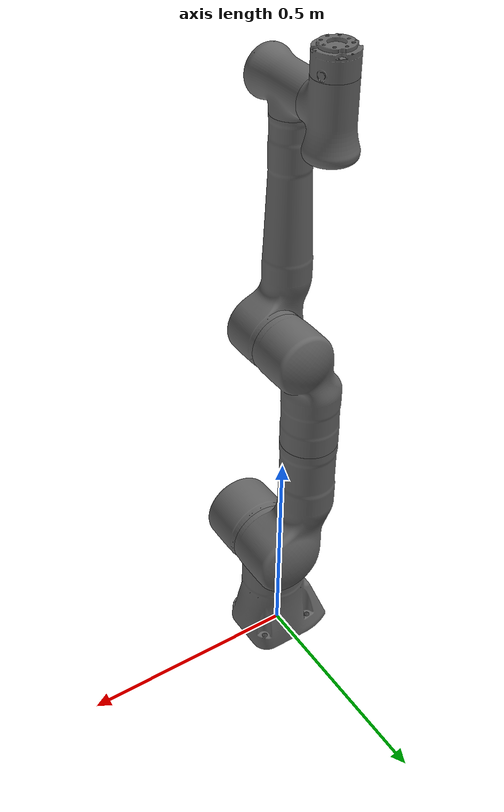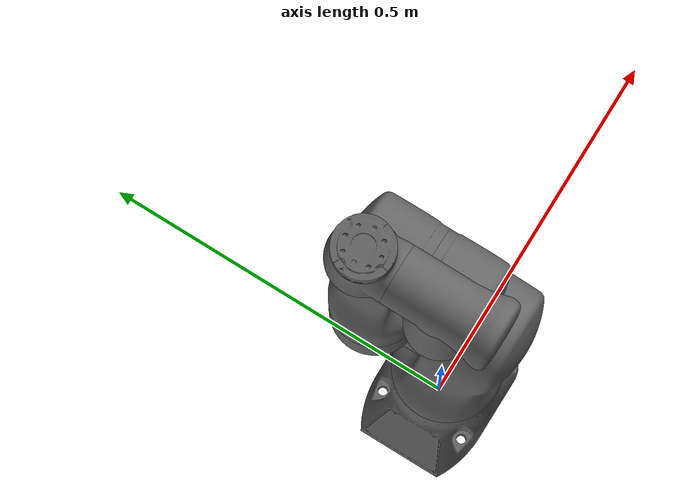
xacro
<?xml version="1.0" ?>
<robot name="kr1018" xmlns:xacro="http://www.ros.org/wiki/xacro">
  <!-- Import Rviz colors -->
  <material name="Black">
    <color rgba="0.0 0.0 0.0 1.0"/>
  </material>
  <material name="Blue">
    <color rgba="0.0 0.0 0.8 1.0"/>
  </material>
  <material name="Green">
    <color rgba="0.0 0.8 0.0 1.0"/>
  </material>
  <material name="Grey">
    <color rgba="0.4 0.4 0.4 1.0"/>
  </material>
  <material name="Orange">
    <color rgba="1.0 0.423529411765 0.0392156862745 1.0"/>
  </material>
  <material name="Brown">
    <color rgba="0.870588235294 0.811764705882 0.764705882353 1.0"/>
  </material>
  <material name="Red">
    <color rgba="0.8 0.0 0.0 1.0"/>
  </material>
  <material name="White">
    <color rgba="1.0 1.0 1.0 1.0"/>
  </material>
  <!--Import the lbr kr macro -->
  <!-- Fix to arm_link just for testing -->
  <link name="arm_link"/>
  <!--kr-->
  <joint name="arm_link_kr_joint" type="fixed">
    <origin rpy="0 0 0" xyz="0 0 0"/>
    <parent link="arm_link"/>
    <child link="kr_link_0"/>
  </joint>
  <link name="kr_link_0">
    <inertial>
      <origin rpy="0 0 0" xyz="-0.1 0 0.07"/>
      <mass value="5"/>
      <inertia ixx="0.05" ixy="0" ixz="0" iyy="0.06" iyz="0" izz="0.03"/>
    </inertial>
    <visual>
      <origin rpy="0 0 0" xyz="0 0 0"/>
      <geometry>
        <mesh filename="package://bunker_description/meshes/kr1018/visual/link_0.stl"/>
      </geometry>
      <material name="Grey"/>
    </visual>
    <collision>
      <origin rpy="0 0 0" xyz="0 0 0"/>
      <geometry>
        <mesh filename="package://bunker_description/meshes/kr1018/collision/link_0.stl"/>
      </geometry>
      <material name="Grey"/>
    </collision>
    <self_collision_checking>
      <origin rpy="0 0 0" xyz="0 0 0"/>
      <geometry>
        <capsule length="0.25" radius="0.15"/>
      </geometry>
    </self_collision_checking>
  </link>
  <joint name="kr_joint_1" type="revolute">
    <parent link="kr_link_0"/>
    <child link="kr_link_1"/>
    <origin rpy="0 0 0" xyz="0.017 0 0.2432"/>
    <axis xyz="0 0 1"/>
    <limit effort="300" lower="-2.96705972839" upper="2.96705972839" velocity="10"/>
    <safety_controller k_position="100" k_velocity="2" soft_lower_limit="-2.93215314335" soft_upper_limit="2.93215314335"/>
    <dynamics damping="0.5"/>
  </joint>
  <link name="kr_link_1">
    <inertial>
      <origin rpy="0 0 0" xyz="0 -0.03 0.12"/>
      <mass value="4"/>
      <inertia ixx="0.1" ixy="0" ixz="0" iyy="0.09" iyz="0" izz="0.02"/>
    </inertial>
    <visual>
      <origin rpy="0 0 0" xyz="0 0 0"/>
      <geometry>
        <mesh filename="package://bunker_description/meshes/kr1018/visual/link_1.stl"/>
      </geometry>
      <material name="Grey"/>
    </visual>
    <collision>
      <origin rpy="0 0 0" xyz="0 0 0"/>
      <geometry>
        <mesh filename="package://bunker_description/meshes/kr1018/collision/link_1.stl"/>
      </geometry>
      <material name="Grey"/>
    </collision>
  </link>
  <joint name="kr_joint_2" type="revolute">
    <parent link="kr_link_1"/>
    <child link="kr_link_2"/>
    <origin rpy="1.57079632679   0 3.14159265359" xyz="0.062 0.0462 0.13"/>
    <axis xyz="0 0 1"/>
    <limit effort="300" lower="-2.09439510239" upper="2.09439510239" velocity="10"/>
    <safety_controller k_position="100" k_velocity="2" soft_lower_limit="-2.05948851735" soft_upper_limit="2.05948851735"/>
    <dynamics damping="0.5"/>
  </joint>
  <link name="kr_link_2">
    <inertial>
      <origin rpy="0 0 0" xyz="0.0003 0.059 0.042"/>
      <mass value="4"/>
      <inertia ixx="0.05" ixy="0" ixz="0" iyy="0.018" iyz="0" izz="0.044"/>
    </inertial>
    <visual>
      <origin rpy="0 0 0" xyz="0 0 0"/>
      <geometry>
        <mesh filename="package://bunker_description/meshes/kr1018/visual/link_2.stl"/>
      </geometry>
      <material name="Grey"/>
    </visual>
    <collision>
      <origin rpy="0 0 0" xyz="0 0 0"/>
      <geometry>
        <mesh filename="package://bunker_description/meshes/kr1018/collision/link_2.stl"/>
      </geometry>
      <material name="Grey"/>
    </collision>
  </link>
  <joint name="kr_joint_3" type="revolute">
    <parent link="kr_link_2"/>
    <child link="kr_link_3"/>
    <origin rpy="1.57079632679 0 3.14159265359" xyz="0.062 0.2908 0.0647"/>
    <axis xyz="0 0 1"/>
    <limit effort="300" lower="-2.96705972839" upper="2.96705972839" velocity="10"/>
    <safety_controller k_position="100" k_velocity="2" soft_lower_limit="-2.93215314335" soft_upper_limit="2.93215314335"/>
    <dynamics damping="0.5"/>
  </joint>
  <link name="kr_link_3">
    <inertial>
      <origin rpy="0 0 0" xyz="0 0.03 0.13"/>
      <mass value="3"/>
      <inertia ixx="0.08" ixy="0" ixz="0" iyy="0.075" iyz="0" izz="0.01"/>
    </inertial>
    <visual>
      <origin rpy="0 0 0" xyz="0 0 0"/>
      <geometry>
        <mesh filename="package://bunker_description/meshes/kr1018/visual/link_3.stl"/>
      </geometry>
      <material name="Grey"/>
    </visual>
    <collision>
      <origin rpy="0 0 0" xyz="0 0 0"/>
      <geometry>
        <mesh filename="package://bunker_description/meshes/kr1018/collision/link_3.stl"/>
      </geometry>
      <material name="Grey"/>
    </collision>
  </link>
  <joint name="kr_joint_4" type="revolute">
    <parent link="kr_link_3"/>
    <child link="kr_link_4"/>
    <origin rpy="1.57079632679 0 0" xyz="0.05 -0.0407 0.2317"/>
    <axis xyz="0 0 1"/>
    <limit effort="300" lower="-2.09439510239" upper="2.09439510239" velocity="10"/>
    <safety_controller k_position="100" k_velocity="2" soft_lower_limit="-2.05948851735" soft_upper_limit="2.05948851735"/>
    <dynamics damping="0.5"/>
  </joint>
  <link name="kr_link_4">
    <inertial>
      <origin rpy="0 0 0" xyz="0 0.067 0.034"/>
      <mass value="2.7"/>
      <inertia ixx="0.03" ixy="0" ixz="0" iyy="0.01" iyz="0" izz="0.029"/>
    </inertial>
    <visual>
      <origin rpy="0 0 0" xyz="0 0 0"/>
      <geometry>
        <mesh filename="package://bunker_description/meshes/kr1018/visual/link_4.stl"/>
      </geometry>
      <material name="Grey"/>
    </visual>
    <collision>
      <origin rpy="0 0 0" xyz="0 0 0"/>
      <geometry>
        <mesh filename="package://bunker_description/meshes/kr1018/collision/link_4.stl"/>
      </geometry>
      <material name="Grey"/>
    </collision>
  </link>
  <joint name="kr_joint_5" type="revolute">
    <parent link="kr_link_4"/>
    <child link="kr_link_5"/>
    <origin rpy="-1.57079632679 3.14159265359 0" xyz="-0.05 0.4195 0.0532"/>
    <axis xyz="0 0 1"/>
    <limit effort="300" lower="-2.96705972839" upper="2.96705972839" velocity="10"/>
    <safety_controller k_position="100" k_velocity="2" soft_lower_limit="-2.93215314335" soft_upper_limit="2.93215314335"/>
    <dynamics damping="0.5"/>
  </joint>
  <link name="kr_link_5">
    <inertial>
      <origin rpy="0 0 0" xyz="0.0001 0.021 0.076"/>
      <mass value="1.7"/>
      <inertia ixx="0.02" ixy="0" ixz="0" iyy="0.018" iyz="0" izz="0.005"/>
    </inertial>
    <visual>
      <origin rpy="0 0 0" xyz="0 0 0"/>
      <geometry>
        <mesh filename="package://bunker_description/meshes/kr1018/visual/link_5.stl"/>
      </geometry>
      <material name="Grey"/>
    </visual>
    <collision>
      <origin rpy="0 0 0" xyz="0 0 0"/>
      <geometry>
        <mesh filename="package://bunker_description/meshes/kr1018/collision/link_5.stl"/>
      </geometry>
      <material name="Grey"/>
    </collision>
  </link>
  <joint name="kr_joint_6" type="revolute">
    <parent link="kr_link_5"/>
    <child link="kr_link_6"/>
    <origin rpy="1.57079632679 0 0" xyz="0 -0.0645 0.0465"/>
    <axis xyz="0 0 1"/>
    <limit effort="300" lower="-2.09439510239" upper="2.09439510239" velocity="10"/>
    <safety_controller k_position="100" k_velocity="2" soft_lower_limit="-2.05948851735" soft_upper_limit="2.05948851735"/>
    <dynamics damping="0.5"/>
  </joint>
  <link name="kr_link_6">
    <inertial>
      <origin rpy="0 0 0" xyz="0 0.0006 0.0004"/>
      <mass value="1.8"/>
      <inertia ixx="0.005" ixy="0" ixz="0" iyy="0.0036" iyz="0" izz="0.0047"/>
    </inertial>
    <visual>
      <origin rpy="0 0 0" xyz="0 0 0"/>
      <geometry>
        <mesh filename="package://bunker_description/meshes/kr1018/visual/link_6.stl"/>
      </geometry>
      <material name="Grey"/>
    </visual>
    <collision>
      <origin rpy="0 0 0" xyz="0 0 0"/>
      <geometry>
        <mesh filename="package://bunker_description/meshes/kr1018/collision/link_6.stl"/>
      </geometry>
      <material name="Grey"/>
    </collision>
  </link>
  <joint name="kr_joint_7" type="revolute">
    <parent link="kr_link_6"/>
    <child link="kr_link_7"/>
    <origin rpy="-1.57079632679 3.14159265359 0" xyz="0 0.05655 0.0465"/>
    <axis xyz="0 0 1"/>
    <limit effort="300" lower="-3.05432619099" upper="3.05432619099" velocity="10"/>
    <safety_controller k_position="100" k_velocity="2" soft_lower_limit="-3.01941960595" soft_upper_limit="3.01941960595"/>
    <dynamics damping="0.5"/>
  </joint>
  <link name="kr_link_7">
    <inertial>
      <origin rpy="0 0 0" xyz="0 0 0.02"/>
      <mass value="0.3"/>
      <inertia ixx="0.001" ixy="0" ixz="0" iyy="0.001" iyz="0" izz="0.001"/>
    </inertial>
    <visual>
      <origin rpy="0 0 0" xyz="0 0 0"/>
      <geometry>
        <mesh filename="package://bunker_description/meshes/kr1018/visual/link_7.stl"/>
      </geometry>
      <material name="Grey"/>
    </visual>
    <collision>
      <origin rpy="0 0 0" xyz="0 0 0"/>
      <geometry>
        <mesh filename="package://bunker_description/meshes/kr1018/collision/link_7.stl"/>
      </geometry>
      <material name="Grey"/>
    </collision>
  </link>
  <joint name="kr_joint_ee" type="fixed">
    <parent link="kr_link_7"/>
    <child link="kr_link_ee"/>
    <origin rpy="0 -1.57079632679 0" xyz="0 0 0.05145"/>
  </joint>
  <link name="kr_link_ee">
    </link>
  <joint name="kr_joint_ee_kuka" type="fixed">
    <parent link="kr_link_7"/>
    <child link="kr_link_ee_kuka"/>
    <origin rpy="3.14159265359 3.14159265359 3.14159265359" xyz="0 0 0.045"/>
    <axis xyz="0 0 1"/>
  </joint>
  <link name="kr_link_ee_kuka">
    </link>
  <gazebo>
    <plugin filename="libgazebo_ros_control.so" name="gazebo_ros_control">
      <robotNamespace>/kr</robotNamespace>
    </plugin>
  </gazebo>
  <gazebo reference="kr_link_0">
    <material>Gazebo/Grey</material>
    <mu1>0.2</mu1>
    <mu2>0.2</mu2>
  </gazebo>
  <gazebo reference="kr_link_1">
    <material>Gazebo/Grey</material>
    <mu1>0.2</mu1>
    <mu2>0.2</mu2>
  </gazebo>
  <gazebo reference="kr_link_2">
    <material>Gazebo/Grey</material>
    <mu1>0.2</mu1>
    <mu2>0.2</mu2>
  </gazebo>
  <gazebo reference="kr_link_3">
    <material>Gazebo/Grey</material>
    <mu1>0.2</mu1>
    <mu2>0.2</mu2>
  </gazebo>
  <gazebo reference="kr_link_4">
    <material>Gazebo/Grey</material>
    <mu1>0.2</mu1>
    <mu2>0.2</mu2>
  </gazebo>
  <gazebo reference="kr_link_5">
    <material>Gazebo/Grey</material>
    <mu1>0.2</mu1>
    <mu2>0.2</mu2>
  </gazebo>
  <gazebo reference="kr_link_6">
    <material>Gazebo/Grey</material>
    <mu1>0.2</mu1>
    <mu2>0.2</mu2>
  </gazebo>
  <gazebo reference="kr_link_7">
    <material>Gazebo/Grey</material>
    <mu1>0.2</mu1>
    <mu2>0.2</mu2>
  </gazebo>
  <transmission name="kr_tran_1">
    <robotNamespace>/kr</robotNamespace>
    <type>transmission_interface/SimpleTransmission</type>
    <joint name="kr_joint_1">
      <hardwareInterface>PositionJointInterface</hardwareInterface>
    </joint>
    <actuator name="kr_motor_1">
      <hardwareInterface>PositionJointInterface</hardwareInterface>
      <mechanicalReduction>1</mechanicalReduction>
    </actuator>
  </transmission>
  <transmission name="kr_tran_2">
    <robotNamespace>/kr</robotNamespace>
    <type>transmission_interface/SimpleTransmission</type>
    <joint name="kr_joint_2">
      <hardwareInterface>PositionJointInterface</hardwareInterface>
    </joint>
    <actuator name="kr_motor_2">
      <hardwareInterface>PositionJointInterface</hardwareInterface>
      <mechanicalReduction>1</mechanicalReduction>
    </actuator>
  </transmission>
  <transmission name="kr_tran_3">
    <robotNamespace>/kr</robotNamespace>
    <type>transmission_interface/SimpleTransmission</type>
    <joint name="kr_joint_3">
      <hardwareInterface>PositionJointInterface</hardwareInterface>
    </joint>
    <actuator name="kr_motor_3">
      <hardwareInterface>PositionJointInterface</hardwareInterface>
      <mechanicalReduction>1</mechanicalReduction>
    </actuator>
  </transmission>
  <transmission name="kr_tran_4">
    <robotNamespace>/kr</robotNamespace>
    <type>transmission_interface/SimpleTransmission</type>
    <joint name="kr_joint_4">
      <hardwareInterface>PositionJointInterface</hardwareInterface>
    </joint>
    <actuator name="kr_motor_4">
      <hardwareInterface>PositionJointInterface</hardwareInterface>
      <mechanicalReduction>1</mechanicalReduction>
    </actuator>
  </transmission>
  <transmission name="kr_tran_5">
    <robotNamespace>/kr</robotNamespace>
    <type>transmission_interface/SimpleTransmission</type>
    <joint name="kr_joint_5">
      <hardwareInterface>PositionJointInterface</hardwareInterface>
    </joint>
    <actuator name="kr_motor_5">
      <hardwareInterface>PositionJointInterface</hardwareInterface>
      <mechanicalReduction>1</mechanicalReduction>
    </actuator>
  </transmission>
  <transmission name="kr_tran_6">
    <robotNamespace>/kr</robotNamespace>
    <type>transmission_interface/SimpleTransmission</type>
    <joint name="kr_joint_6">
      <hardwareInterface>PositionJointInterface</hardwareInterface>
    </joint>
    <actuator name="kr_motor_6">
      <hardwareInterface>PositionJointInterface</hardwareInterface>
      <mechanicalReduction>1</mechanicalReduction>
    </actuator>
  </transmission>
  <transmission name="kr_tran_7">
    <robotNamespace>/kr</robotNamespace>
    <type>transmission_interface/SimpleTransmission</type>
    <joint name="kr_joint_7">
      <hardwareInterface>PositionJointInterface</hardwareInterface>
    </joint>
    <actuator name="kr_motor_7">
      <hardwareInterface>PositionJointInterface</hardwareInterface>
      <mechanicalReduction>1</mechanicalReduction>
    </actuator>
  </transmission>
</robot>
